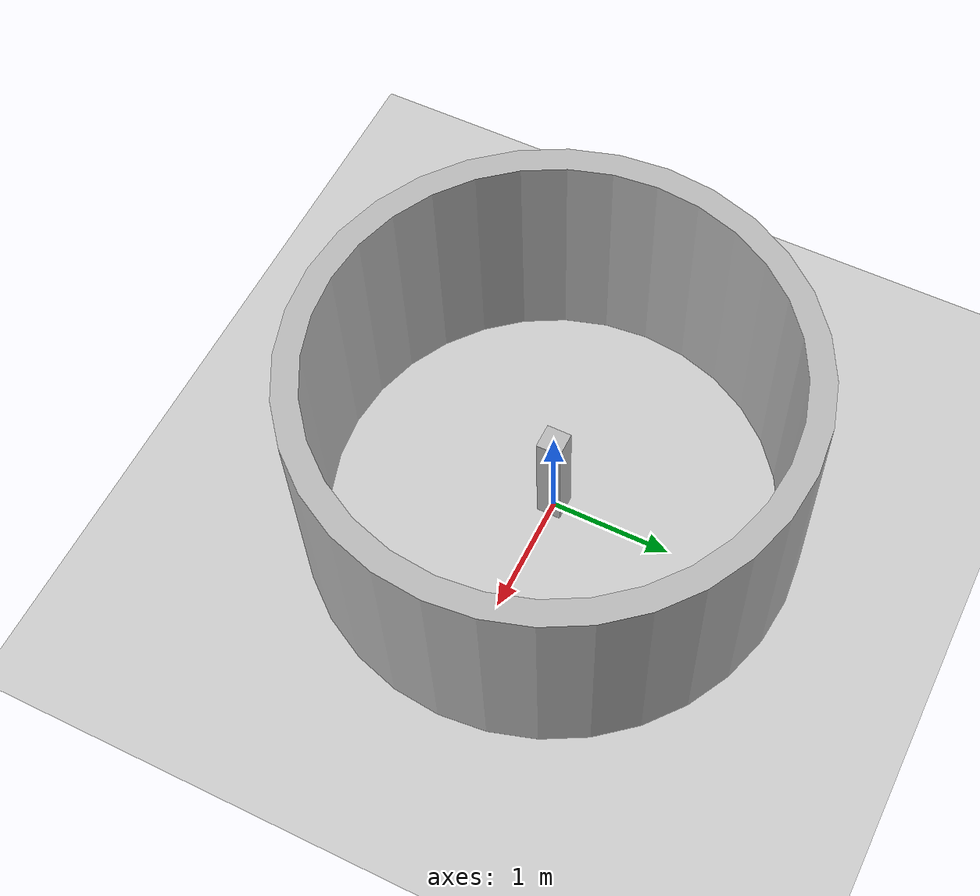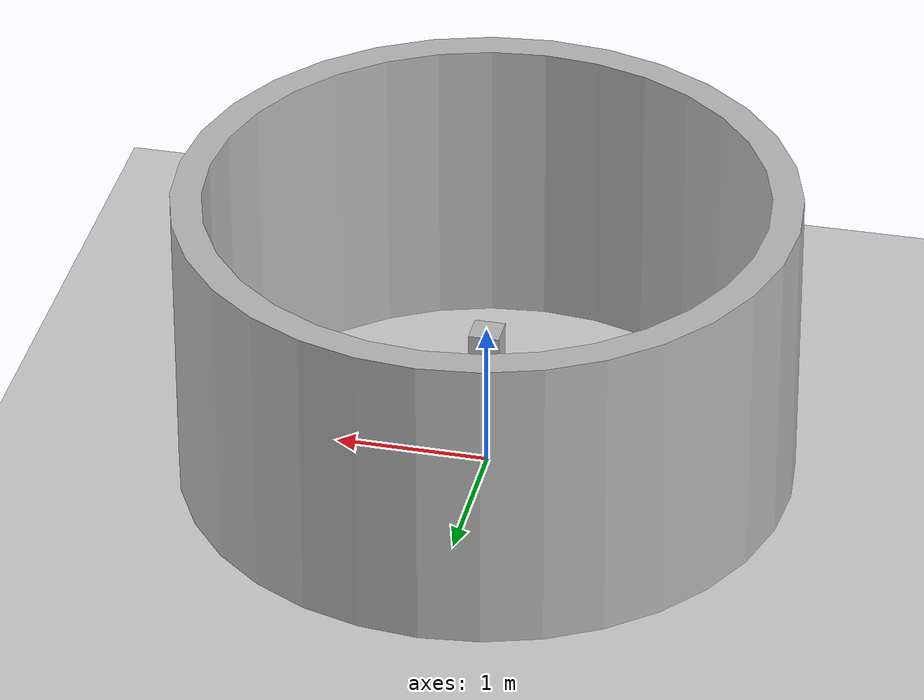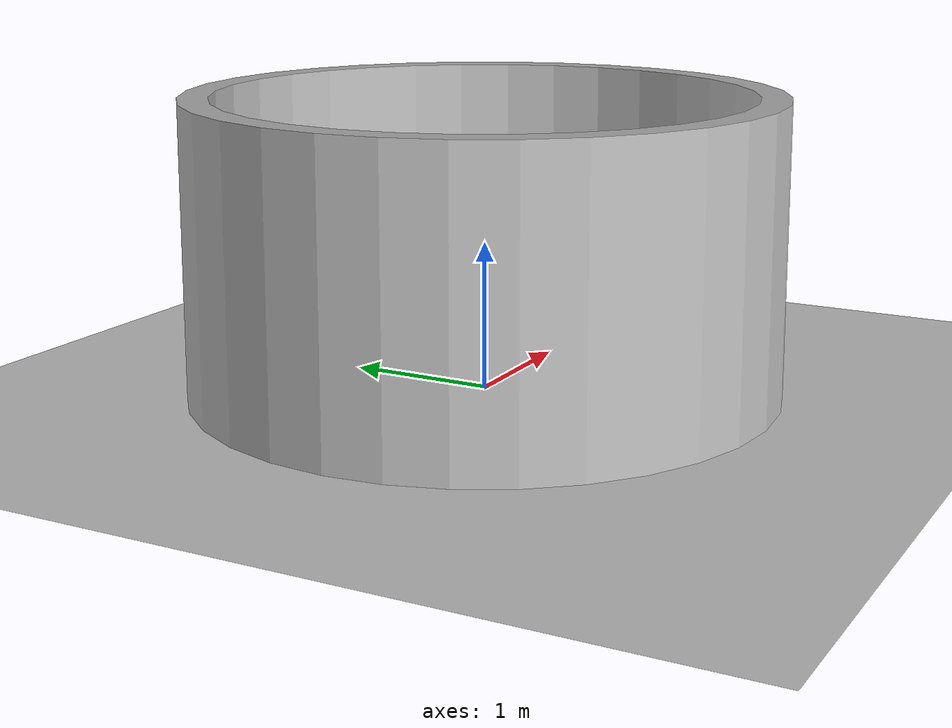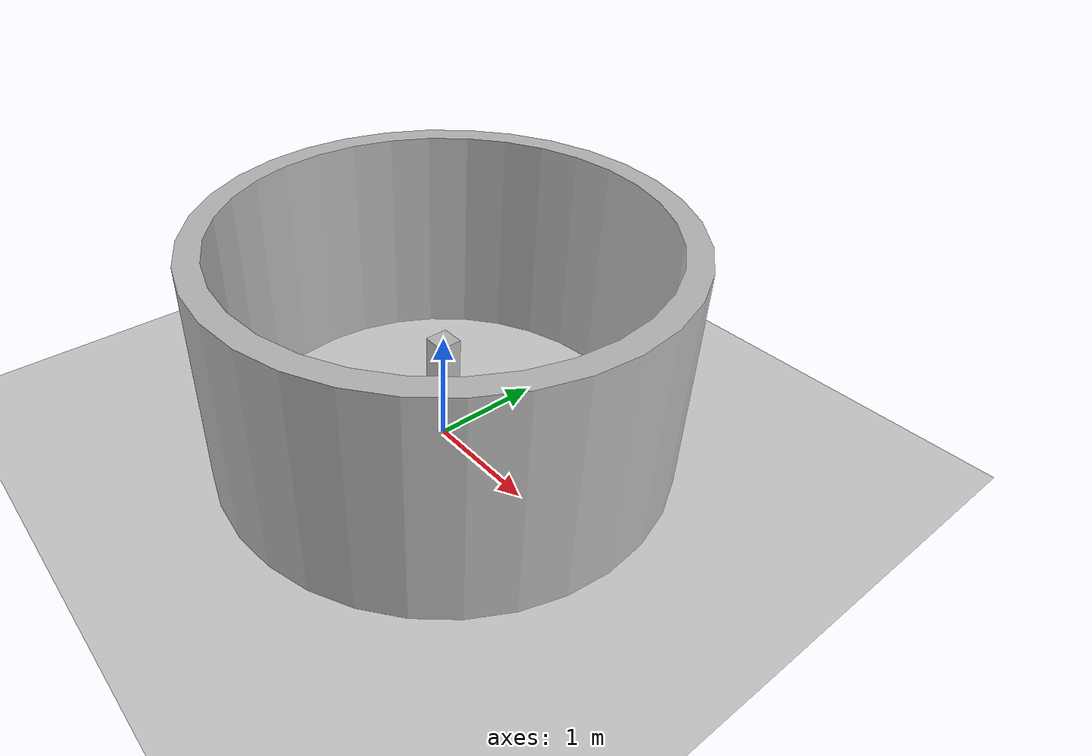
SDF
<?xml version="1.0" ?>
<sdf version="1.4">
 <world name="default">
 <include>
   <uri>model://ground_plane</uri>
 </include>

 <include>
   <uri>model://sun</uri>
 </include>

 <!-- reference to your plugin -->
 <model name='camera'>
   <pose>0 0 0.5 0 -0 0</pose>
   <link name='link'>
     <inertial>
       <mass>0.1</mass>
       <inertia>
         <ixx>1</ixx>
         <ixy>0</ixy>
         <ixz>0</ixz>
         <iyy>1</iyy>
         <iyz>0</iyz>
         <izz>1</izz>
       </inertia>
     </inertial>
     <collision name='collision'>
       <geometry>
         <box>
            <size>0.2 0.2 1</size>
         </box>
       </geometry>
       <max_contacts>10</max_contacts>
       <surface>
         <contact>
           <ode/>
         </contact>
         <bounce/>
         <friction>
           <ode/>
         </friction>
       </surface>
     </collision>
     <visual name='visual'>
       <geometry>
         <box>
           <size>0.2 0.2 1</size>
         </box>
       </geometry>
     </visual>
     <sensor name='camera' type='camera'>
       <pose>0 0 0.5 0 -0 0</pose>
       <camera name='__default__'>
         <horizontal_fov>0.5</horizontal_fov>
         <image>
           <width>320</width>
           <height>240</height>
         </image>
         <clip>
           <near>0.1</near>
           <far>100</far>
         </clip>
       </camera>
       <plugin name="gazebo_light_sensor_plugin" filename="libgazebo_light_sensor_plugin.so">
         <cameraName>camera</cameraName>
         <alwaysOn>true</alwaysOn>
         <updateRate>10</updateRate>
         <imageTopicName>rgb/image_raw</imageTopicName>
         <depthImageTopicName>depth/image_raw</depthImageTopicName>
         <pointCloudTopicName>depth/points</pointCloudTopicName>
         <cameraInfoTopicName>rgb/camera_info</cameraInfoTopicName>
         <depthImageCameraInfoTopicName>depth/camera_info</depthImageCameraInfoTopicName>
         <frameName>camera_depth_optical_frame</frameName>
         <baseline>0.1</baseline>
         <distortion_k1>0.0</distortion_k1>
         <distortion_k2>0.0</distortion_k2>
         <distortion_k3>0.0</distortion_k3>
         <distortion_t1>0.0</distortion_t1>
         <distortion_t2>0.0</distortion_t2>
         <pointCloudCutoff>0.4</pointCloudCutoff>
         <robotNamespace>/</robotNamespace>
       </plugin>
       <visualize>true</visualize>
     </sensor>
     <self_collide>0</self_collide>
     <kinematic>0</kinematic>
     <gravity>1</gravity>
   </link>
 </model>
 <model name="cylinder">
    <pose>0 0 0  0 0 0</pose>
    <static>true</static>
    <link name="body">
      <visual name="visual">
        <geometry>
          <mesh><uri>file://meshes/Cylinder.dae</uri></mesh>
        </geometry>
      </visual>
    </link>
</model>
 </world>
</sdf>
